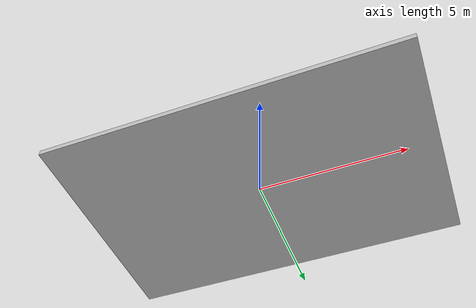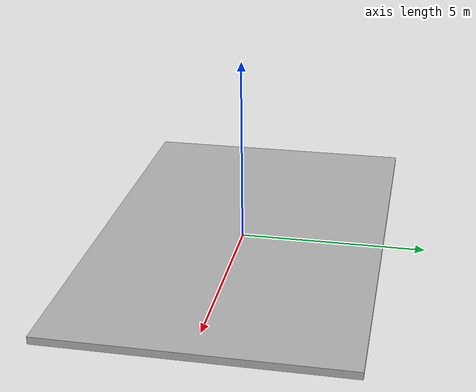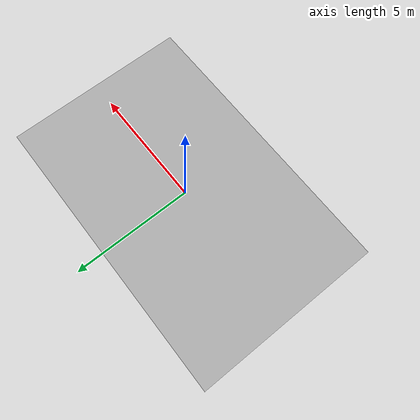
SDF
<?xml version='1.0'?>
<sdf version='1.6'>
  <model name='plane_test'>
    <link name='link'>
      <inertial>
        <mass>13.3626</mass>
        <inertia>
          <ixx>86.3001</ixx>
          <ixy>0</ixy>
          <ixz>0</ixz>
          <iyy>89.6046</iyy>
          <iyz>0</iyz>
          <izz>175.841</izz>
        </inertia>
        <pose frame=''>0 0 0 0 -0 0</pose>
      </inertial>
      <self_collide>0</self_collide>
      <enable_wind>0</enable_wind>
      <kinematic>0</kinematic>
      <pose frame=''>0.0 0.0 0 0 -0 0</pose>
      <visual name='visual'>
        <geometry>
          <box>
            <size>12.057045 7.762755 0.20</size>
          </box>
        </geometry>
        <material>
          <script>
            <uri>model://plane_test/materials/scripts</uri>
            <uri>model://plane_test/materials/textures</uri>
            <name>vrc/circuit</name>
          </script>
        </material>
        <pose frame=''>0 0 0 0 -0 0</pose>
        <transparency>0</transparency>
        <cast_shadows>1</cast_shadows>
      </visual>
      <collision name='collision'>
        <laser_retro>0</laser_retro>
        <max_contacts>10</max_contacts>
        <pose frame=''>0 0 0 0 -0 0</pose>
        <geometry>
          <box>
            <size>12.057045 7.762755 0.20</size>
          </box>
        </geometry>
        <surface>
          <friction>
            <ode>
              <mu>1</mu>
              <mu2>1</mu2>
              <fdir1>0 0 0</fdir1>
              <slip1>0</slip1>
              <slip2>0</slip2>
            </ode>
            <torsional>
              <coefficient>1</coefficient>
              <patch_radius>0</patch_radius>
              <surface_radius>0</surface_radius>
              <use_patch_radius>1</use_patch_radius>
              <ode>
                <slip>0</slip>
              </ode>
            </torsional>
          </friction>
          <bounce>
            <restitution_coefficient>0</restitution_coefficient>
            <threshold>1e+06</threshold>
          </bounce>
          <contact>
            <collide_without_contact>0</collide_without_contact>
            <collide_without_contact_bitmask>1</collide_without_contact_bitmask>
            <collide_bitmask>1</collide_bitmask>
            <ode>
              <soft_cfm>0</soft_cfm>
              <soft_erp>0.2</soft_erp>
              <kp>1e+13</kp>
              <kd>1</kd>
              <max_vel>0.01</max_vel>
              <min_depth>0</min_depth>
            </ode>
            <bullet>
              <split_impulse>1</split_impulse>
              <split_impulse_penetration_threshold>-0.01</split_impulse_penetration_threshold>
              <soft_cfm>0</soft_cfm>
              <soft_erp>0.2</soft_erp>
              <kp>1e+13</kp>
              <kd>1</kd>
            </bullet>
          </contact>
        </surface>
      </collision>
    </link>
    <static>1</static>   <!-- To make the plane static, set this to 1 -->
    <allow_auto_disable>1</allow_auto_disable>
  </model>
</sdf>
